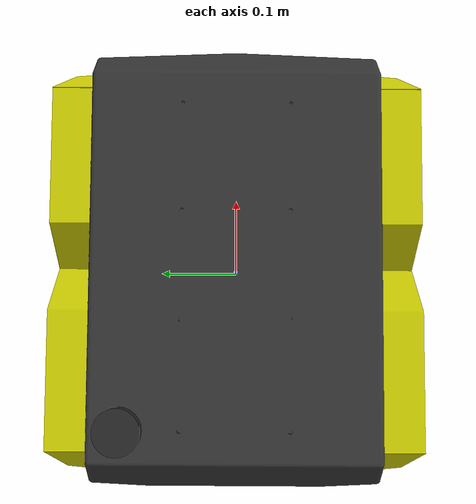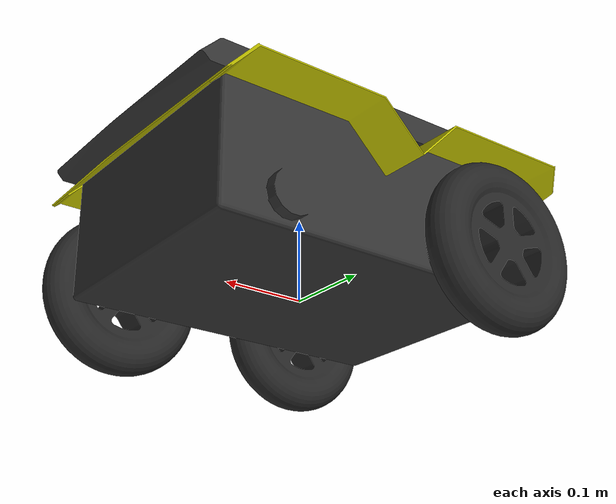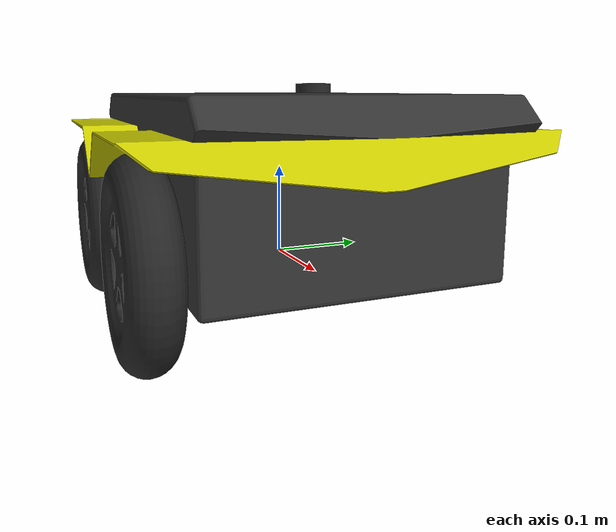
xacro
<?xml version="1.0"?>
<robot name="iggy" xmlns:xacro="http://www.ros.org/wiki/xacro" xmlns:controller="http://playerstage.sourceforge.net/gazebo/xmlschema/#controller">

  <!-- PROPERTY LIST -->
  <!--All units in m-kg-s-radians unit system -->
  <property name="M_PI" value="3.1415926535897931" />
  <property name="M_PI_2" value="1.570796327" />
  <property name="DEG_TO_RAD" value="0.017453293" />

  <!-- Main body radius and height -->
  <!-- Main Body Cylinder base   -->
  <property name="base_height" value="0.02" />
  <property name="base_radius" value="0.15" />
  <property name="base_mass" value="5" /> <!-- in kg-->

  <!-- caster wheel radius and height -->
  <!-- caster wheel mass -->
  <property name="caster_f_height" value="0.04" />
  <property name="caster_f_radius" value="0.025" />
  <property name="caster_f_mass" value="0.5" /> <!-- in kg-->

  <!-- caster wheel radius and height -->
  <!-- caster wheel mass -->
  <property name="caster_b_height" value="0.04" />
  <property name="caster_b_radius" value="0.025" />
  <property name="caster_b_mass" value="0.5" /> <!-- in kg-->
    <xacro:property name="PI" value="3.1415926535897931" />

    <xacro:property name="wheelbase" value="0.262" />    <!-- TODO UPDATE -->
    <xacro:property name="track" value="0.37559" />    <!-- TODO UPDATE -->
    <xacro:property name="wheel_vertical_offset" value="0.0345" />    <!-- TODO UPDATE -->
    <xacro:property name="footprint_vertical_offset" value="-0.0655" />    <!-- TODO UPDATE -->
    <xacro:property name="wheel_radius" value="0.098" />    <!-- TODO UPDATE -->
    <xacro:property name="wheel_width" value="0.040" />    <!-- TODO UPDATE -->
    <xacro:property name="chassis_length" value="0.914" />    <!-- TODO UPDATE -->
    <xacro:property name="chassis_width" value="0.609" />    <!-- TODO UPDATE -->
    <xacro:property name="chassis_height" value="0.184" />    <!-- TODO UPDATE -->
    <xacro:property name="dummy_inertia" value="1e-09" />    <!-- TODO UPDATE -->
    <xacro:property name="mount_spacing" value="0.120" />    <!-- TODO UPDATE -->

    <material name="dark_grey">
        <color rgba="0.2 0.2 0.2 1.0" />
    </material>
    <material name="light_grey">
        <color rgba="0.4 0.4 0.4 1.0" />
    </material>
    <material name="yellow">
        <color rgba="0.8 0.8 0.0 1.0" />
    </material>
    <material name="black">
        <color rgba="0.15 0.15 0.15 1.0" />
    </material>

    <xacro:macro name="wheel" params="prefix *joint_pose">
        <link name="${prefix}_wheel_link">
            <visual>
                <origin xyz="0 0 0" rpy="${PI/2} 0 0" />
                <geometry>
                    <mesh filename="package://iggy_description/meshes/jackal-wheel.stl" />
                </geometry>
                <material name="black" />
            </visual>
            <collision>
                <origin xyz="0 0 0" rpy="${PI/2} 0 0" />
                <geometry>
                    <cylinder radius="${wheel_radius}" length="${wheel_width}" />
                </geometry>
            </collision>
            <inertial>
                <origin xyz="0 0 0" rpy="0 0 0" />
                <mass value="0.477" />
                <inertia ixx="0.0013" ixy="0" ixz="0" iyy="0.0024" iyz="0" izz="0.0013" />
            </inertial>
        </link>
        <gazebo reference="${prefix}_wheel_link">
            <material>Gazebo/DarkGrey</material>
        </gazebo>
        <joint name="${prefix}_wheel" type="continuous">
            <parent link="chassis_link" />
            <child link="${prefix}_wheel_link" />
            <xacro:insert_block name="joint_pose" />
            <axis xyz="0 1 0" />
        </joint>
        <!-- Create a transmission for each wheel -->
        <transmission name="${prefix}_wheel_trans">
            <type>transmission_interface/SimpleTransmission</type>
            <joint name="${prefix}_wheel">
                <hardwareInterface>VelocityJointInterface</hardwareInterface>
            </joint>
            <actuator name="${prefix}_actuator">
                <mechanicalReduction>1</mechanicalReduction>
            </actuator>
        </transmission>
    </xacro:macro>

    <!-- TODO Create Caster to replace front wheels  -->

    <xacro:wheel prefix="front_right">
        <origin xyz="${wheelbase/2} ${-track/2} ${wheel_vertical_offset}" rpy="0 0 0" />
    </xacro:wheel>
    <xacro:wheel prefix="rear_left">
        <origin xyz="${-wheelbase/2} ${track/2} ${wheel_vertical_offset}" rpy="0 0 0" />
    </xacro:wheel>
    <xacro:wheel prefix="rear_right">
        <origin xyz="${-wheelbase/2} ${-track/2} ${wheel_vertical_offset}" rpy="0 0 0" />
    </xacro:wheel>

    <link name="base_link"></link>

    <joint name="base_link_joint" type="fixed">
        <origin xyz="0 0 0" rpy="0 0 0" />
        <parent link="base_link" />
        <child link="chassis_link" />
    </joint>

    <link name="chassis_link">
        <visual>
            <origin xyz="0 0 ${footprint_vertical_offset}" rpy="${PI/2} 0 ${PI/2}" />
            <geometry>
                <mesh filename="package://iggy_description/meshes/jackal-base.stl" />
            </geometry>
            <material name="dark_grey" />
        </visual>
        <collision>
            <origin xyz="0 0 ${chassis_height/2}" />
            <geometry>
                <box size="${chassis_length} ${chassis_width} ${chassis_height}" />
            </geometry>
        </collision>
        <inertial>
            <!-- Center of mass -->
            <origin xyz="0.012  0.002 0.067" rpy="0 0 0" />
            <mass value="16.523" />
            <!-- Moments of inertia: ( chassis without wheels ) -->
            <inertia ixx="0.3136" ixy="-0.0008" ixz="0.0164" iyy="0.3922" iyz="-0.0009" izz="0.4485" />
        </inertial>
    </link>

    <!-- TODO IGGY does not have fenders. What to do with this?? -->
    <link name="fenders_link">
        <visual>
            <origin xyz="0 0 ${footprint_vertical_offset}" rpy="${PI/2} 0 ${PI/2}" />
            <geometry>
                <mesh filename="package://iggy_description/meshes/jackal-fenders.stl" />
            </geometry>
            <material name="yellow" />
        </visual>
    </link>

    <joint name="fenders_joint" type="fixed">
        <parent link="chassis_link" />
        <child link="fenders_link" />
    </joint>

    <link name="imu_link">
        <inertial>
            <mass value="0.001" />
            <origin xyz="0 0 0" rpy="0 0 0" />
            <inertia ixx="${dummy_inertia}" ixy="0.0" ixz="0.0" iyy="${dummy_inertia}" iyz="0.0" izz="${dummy_inertia}" />
        </inertial>
    </link>

    <joint name="imu_joint" type="fixed">
        <parent link="chassis_link" />
        <child link="imu_link" />
    </joint>

    <!-- TODO: Same note as applies to imu_link -->
    <link name="navsat_link">
        <visual>
            <geometry>
                <cylinder radius="0.026" length="0.016" />
            </geometry>
            <origin xyz="0 0 0.008" />
            <material name="black" />
        </visual>
    </link>
    <joint name="navsat_joint" type="fixed">
        <parent link="chassis_link" />
        <child link="navsat_link" />
        <origin xyz="-0.180 0.126 0.1815" />
    </joint>

    <link name="mid_mount"></link>
    <joint name="mid_mount_joint" type="fixed">
        <parent link="chassis_link" />
        <child link="mid_mount" />
        <origin xyz="0 0 ${chassis_height}" />
    </joint>

    <link name="rear_mount"></link>
    <joint name="rear_mount_joint" type="fixed">
        <parent link="mid_mount" />
        <child link="rear_mount" />
        <origin xyz="${-mount_spacing} 0 0" />
    </joint>

    <link name="front_mount"></link>
    <joint name="front_mount_joint" type="fixed">
        <parent link="mid_mount" />
        <child link="front_mount" />
        <origin xyz="${mount_spacing} 0 0" />
    </joint>

    <!-- Bring in simulation data for Gazebo. -->
    <xacro:include filename="iggy.gazebo" />
</robot>
